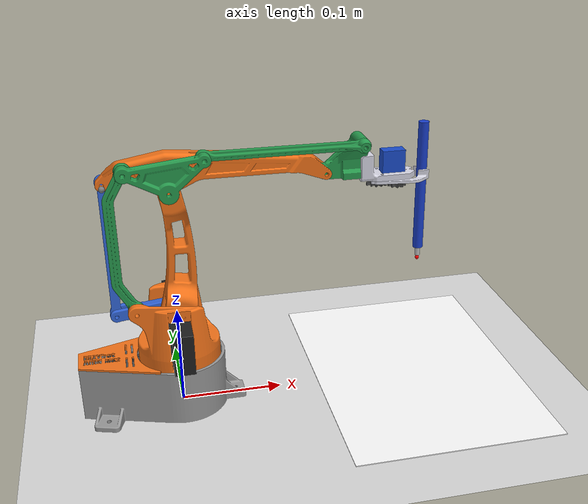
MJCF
<mujoco model="eezybotarm_mk2">
  <!-- Sinh tu dong boi build_model.py — KHONG sua tay, sua params.py roi build lai -->
  <compiler angle="radian" inertiafromgeom="false" meshdir="meshes"/>
  <option timestep="0.0005" integrator="implicitfast" gravity="0 0 -9.81"/>
  <visual><global offwidth="1280" offheight="960"/></visual>
  <asset>
    <texture name="grid" type="2d" builtin="checker" rgb1="0.9 0.9 0.9" rgb2="0.8 0.8 0.8" width="300" height="300"/>
    <material name="grid" texture="grid" texrepeat="10 10"/>
    <mesh name="EBAmk2_001_base" file="EBAmk2_001_base.stl"/>
    <mesh name="EBAmk2_011_gearmast" file="EBAmk2_011_gearmast.stl"/>
    <mesh name="EBAmk2_002_mainarm" file="EBAmk2_002_mainarm.stl"/>
    <mesh name="EBAmk2_006_horarm__" file="EBAmk2_006_horarm__.stl"/>
    <mesh name="EBAmk2_009_trialinkfront" file="EBAmk2_009_trialinkfront.stl"/>
    <mesh name="EBAmk2_014_claw_base" file="EBAmk2_014_claw_base.stl"/>
    <mesh name="EBAmk2_003_varm" file="EBAmk2_003_varm.stl"/>
    <mesh name="EBAmk2_004_link135" file="EBAmk2_004_link135.stl"/>
    <mesh name="EBAmk2_005_link135angled" file="EBAmk2_005_link135angled.stl"/>
    <mesh name="EBAmk2_007_trialink" file="EBAmk2_007_trialink.stl"/>
    <mesh name="EBAmk2_008_link147_new" file="EBAmk2_008_link147_new.stl"/>
    <mesh name="EBAmk2_015_claw_finger_dx" file="EBAmk2_015_claw_finger_dx.stl"/>
    <mesh name="EBAmk2_017_claw_finger_sx" file="EBAmk2_017_claw_finger_sx.stl"/>
    <mesh name="EBAmk2_018_claw_gear_driven" file="EBAmk2_018_claw_gear_driven.stl"/>
    <mesh name="EBAmk2_016_claw_gear_drive" file="EBAmk2_016_claw_gear_drive.stl"/>
    <mesh name="EBAmk2_012_mainbase" file="EBAmk2_012_mainbase.stl"/>
    <mesh name="EBAmk2_013_lower_base" file="EBAmk2_013_lower_base.stl"/>
    <mesh name="EBAmk2_019_drive_cover" file="EBAmk2_019_drive_cover.stl"/>
    <mesh name="EBAmk2_010_gearservo" file="EBAmk2_010_gearservo.stl"/>
  </asset>
  <worldbody>
    <light pos="0.3 -0.3 0.8" dir="-0.3 0.3 -0.8"/>
    <geom name="table" type="plane" size="0.6 0.6 0.01" material="grid" contype="0" conaffinity="0"/>
    <geom name="paper" type="box" pos="0.245 0 0.0005" size="0.105 0.1485 0.0005" rgba="1 1 1 1"
          contype="0" conaffinity="2" friction="0.2 0.005 0.0001" solref="0.002 1"/>
    <geom type="mesh" mesh="EBAmk2_012_mainbase" rgba="0.6 0.6 0.6 1" contype="0" conaffinity="0" group="1"/>
    <geom type="mesh" mesh="EBAmk2_013_lower_base" rgba="0.5 0.5 0.5 1" contype="0" conaffinity="0" group="1"/>
    <geom type="mesh" mesh="EBAmk2_019_drive_cover" rgba="0.95 0.45 0.1 1" contype="0" conaffinity="0" group="1"/>
    <geom name="mg996r_base" type="box" pos="-0.066 0 0.0238" size="0.02035 0.00985 0.02145" rgba="0.12 0.12 0.12 1" contype="0" conaffinity="0" group="1"/>
    <body name="gearservo" pos="-0.05625 0 0">
      <inertial pos="-8.7805e-07 2.34676e-06 0.0475788" mass="0.00566278" fullinertia="5.82105e-07 5.82105e-07 1.14117e-06 -7.65455e-15 -2.11369e-16 3.82301e-16"/>
      <joint name="gearservo" type="hinge" axis="0 0 1" armature="1e-06"/>
      <geom type="mesh" mesh="EBAmk2_010_gearservo" rgba="0.3 0.3 0.3 1" contype="0" conaffinity="0" group="1"/>
    </body>
    <body name="turret" pos="0 0 0">
      <inertial pos="-0.000300579 -0.000617576 0.073251" mass="0.326504" fullinertia="0.000384604 0.000193279 0.000361709 -3.5564e-06 7.23647e-06 5.39541e-06"/>
      <joint name="base_yaw" type="hinge" axis="0 0 1" damping="0.669011" armature="0" frictionloss="0"/>
      <geom type="mesh" mesh="EBAmk2_001_base" rgba="0.95 0.45 0.1 1" contype="0" conaffinity="0" group="1"/>
      <geom type="mesh" mesh="EBAmk2_011_gearmast" rgba="0.3 0.3 0.3 1" contype="0" conaffinity="0" group="1"/>
      <geom name="mg996r_elbow" type="box" pos="0 0.0395 0.0845" size="0.00985 0.02145 0.02035" rgba="0.12 0.12 0.12 1" contype="0" conaffinity="0" group="1"/>
      <geom name="mg996r_shoulder" type="box" pos="0 -0.0394 0.0845" size="0.00985 0.02145 0.02035" rgba="0.12 0.12 0.12 1" contype="0" conaffinity="0" group="1"/>
      <body name="mainarm" pos="0 0 0.09425">
        <inertial pos="0.00470724 -0.00264703 0.0590433" mass="0.0830792" fullinertia="0.000184127 0.000181815 1.46534e-05 -3.97752e-07 -1.55376e-06 -8.495e-07"/>
        <joint name="shoulder" type="hinge" axis="0 -1 0" damping="0.167253" armature="0" frictionloss="0"/>
        <geom type="mesh" mesh="EBAmk2_002_mainarm" rgba="0.95 0.45 0.1 1" contype="0" conaffinity="0" group="1"/>
        <site name="E_main" pos="8.26637e-18 0 0.135" size="0.003"/>
        <body name="horarm" pos="8.26637e-18 0 0.135">
          <inertial pos="0.0367294 0.00545907 0.0124691" mass="0.0485629" fullinertia="6.90345e-06 0.000173534 0.000173167 5.45019e-06 9.72735e-07 5.84072e-07"/>
          <joint name="elbow_rel" type="hinge" axis="0 -1 0" damping="0" armature="0" frictionloss="0"/>
          <geom type="mesh" mesh="EBAmk2_006_horarm__" rgba="0.95 0.45 0.1 1" contype="0" conaffinity="0" group="1"/>
          <site name="T_hor" pos="-0.057 0 0" size="0.003"/>
          <body name="wrist" pos="0.147 0 0">
            <inertial pos="0.0572645 0.000467674 -0.00502704" mass="0.0517672" fullinertia="4.15074e-05 8.95982e-05 5.07315e-05 3.198e-07 2.09916e-05 3.06161e-07"/>
            <joint name="wrist_rel" type="hinge" axis="0 -1 0" damping="0" armature="0" frictionloss="0"/>
            <geom type="mesh" mesh="EBAmk2_009_trialinkfront" rgba="0.15 0.6 0.3 1" contype="0" conaffinity="0" group="1"/>
            <geom type="mesh" mesh="EBAmk2_014_claw_base" rgba="0.85 0.85 0.9 1" contype="0" conaffinity="0" group="1"/>
            <geom name="sg90" type="box" pos="0.066042 0.00048 0.00184594" size="0.0111 0.0059 0.0155" quat="0.999997 5.26836e-09 -0.00235397 0" rgba="0.1 0.3 0.8 1" contype="0" conaffinity="0" group="1"/>
            <site name="Q_wrist" pos="0.0326024 0 0.0280372" size="0.003"/>
            <geom name="pen_body" type="cylinder" fromto="0.0963512 0.000475 -0.0859973 0.0957486 0.000475 0.0420012" size="0.005" rgba="0.1 0.25 0.8 1" contype="0" conaffinity="0" group="1"/>
<geom name="pen_cone" type="cylinder" fromto="0.0963936 0.000475 -0.0949972 0.0963512 0.000475 -0.0859973" size="0.0025" rgba="0.75 0.75 0.75 1" contype="0" conaffinity="0" group="1"/>
<geom name="pen_neck" type="cylinder" fromto="0.0964053 0.000475 -0.0974972 0.0963936 0.000475 -0.0949972" size="0.0008" rgba="0.6 0.6 0.6 1" contype="0" conaffinity="0" group="1"/>
<geom name="pen_tip" type="sphere" pos="0.0964053 0.000475 -0.0974972" size="0.0005" rgba="0.05 0.05 0.05 1" contype="2" conaffinity="0" condim="3" friction="0.2 0.005 0.0001" solref="0.002 1" margin="5e-05" gap="5e-05"/>
<site name="tool" pos="0.0964077 0.000475 -0.0979972" size="0.002" rgba="1 0 0 1"/>
<site name="grip" pos="0.095984 0.000475 -0.0079982" size="0.002" rgba="0 1 0 1"/>
            <body name="finger_dx" pos="0.053596 -0.00857 -0.00964778">
              <inertial pos="0.018535 0.00014029 -0.000902766" mass="0.00182761" fullinertia="2.78611e-08 5.359e-07 5.5226e-07 2.25614e-08 -2.3201e-08 -2.22639e-09"/>
              <joint name="finger_dx" type="hinge" axis="-0.00470793 0 0.999989" armature="1e-06" limited="true" range="-0.698132 0"/>
              <geom type="mesh" mesh="EBAmk2_015_claw_finger_dx" rgba="0.85 0.85 0.9 1" contype="0" conaffinity="0" group="1"/>
            </body>
            <body name="finger_sx" pos="0.053596 0.00952 -0.00964778">
              <inertial pos="0.00993654 -0.000868061 -0.00313497" mass="0.00338882" fullinertia="9.13503e-08 8.79448e-07 9.13217e-07 -4.54277e-08 -9.62561e-08 -8.4332e-09"/>
              <joint name="finger_sx" type="hinge" axis="-0.00470793 0 0.999989" armature="1e-06" limited="true" range="0 0.698132"/>
              <geom type="mesh" mesh="EBAmk2_017_claw_finger_sx" rgba="0.85 0.85 0.9 1" contype="0" conaffinity="0" group="1"/>
              <geom type="mesh" mesh="EBAmk2_018_claw_gear_driven" rgba="0.3 0.3 0.3 1" contype="0" conaffinity="0" group="1"/>
            </body>
            <body name="gear016" pos="0.0708738 0.00048 -0.00956644">
              <inertial pos="-0.000317855 -0.000338247 -0.00667189" mass="0.000712942" fullinertia="1.55726e-08 1.5504e-08 2.81072e-08 1.01859e-09 2.55386e-10 3.08401e-10"/>
              <joint name="gripper" type="hinge" axis="-0.00470793 0 0.999989" armature="1e-06" damping="0.0168564" limited="true" range="-1.11701 0"/>
              <geom type="mesh" mesh="EBAmk2_016_claw_gear_drive" rgba="0.3 0.3 0.3 1" contype="0" conaffinity="0" group="1"/>
            </body>
          </body>
        </body>
      </body>
      <body name="varm" pos="0 0 0.09425">
        <inertial pos="-0.0203304 0.0169755 0.000568095" mass="0.0150344" fullinertia="7.85024e-07 6.84699e-06 6.5352e-06 4.20299e-07 1.28454e-07 -8.41439e-09"/>
        <joint name="elbow_servo" type="hinge" axis="0 -1 0" damping="0.167253" armature="0" frictionloss="0"/>
        <geom type="mesh" mesh="EBAmk2_003_varm" rgba="0.2 0.4 0.85 1" contype="0" conaffinity="0" group="1"/>
        <body name="link004" pos="-0.057 0 0">
          <inertial pos="4.57987e-07 0.0198289 0.0734379" mass="0.00732513" fullinertia="1.65303e-05 1.65488e-05 8.34606e-08 -1.63591e-11 -1.23271e-09 -2.13042e-07"/>
          <joint name="l004" type="hinge" axis="0 -1 0" damping="0" armature="0" frictionloss="0"/>
          <geom type="mesh" mesh="EBAmk2_004_link135" rgba="0.2 0.4 0.85 1" contype="0" conaffinity="0" group="1"/>
          <site name="T_l004" pos="7.10543e-18 0 0.135" size="0.003"/>
        </body>
      </body>
      <body name="link005" pos="-0.03797 0 0.11444">
        <inertial pos="-0.00937315 -0.0151939 0.0675052" mass="0.0081693" fullinertia="1.82316e-05 1.86257e-05 4.29545e-07 1.54809e-08 -4.774e-10 -7.61011e-13"/>
        <joint name="l005" type="hinge" axis="0 -1 0" damping="0" armature="0" frictionloss="0"/>
        <geom type="mesh" mesh="EBAmk2_005_link135angled" rgba="0.15 0.6 0.3 1" contype="0" conaffinity="0" group="1"/>
        <body name="trialink" pos="3.66504e-06 0 0.134998">
          <inertial pos="0.0356784 -0.0209389 -0.00553182" mass="0.0230965" fullinertia="2.40987e-06 9.14099e-06 7.94166e-06 -6.98248e-08 -4.70102e-07 2.85865e-07"/>
          <joint name="tri" type="hinge" axis="0 -1 0" damping="0" armature="0" frictionloss="0"/>
          <geom type="mesh" mesh="EBAmk2_007_trialink" rgba="0.15 0.6 0.3 1" contype="0" conaffinity="0" group="1"/>
          <site name="E_tri" pos="0.0379663 0 -0.0201881" size="0.003"/>
          <body name="link008" pos="0.0705687 0 0.00784916">
            <inertial pos="0.079606 -0.0155891 4.11825e-07" mass="0.00781487" fullinertia="8.72626e-08 2.05164e-05 2.04965e-05 2.35633e-07 -1.39562e-09 1.59973e-11"/>
            <joint name="l008" type="hinge" axis="0 -1 0" damping="0" armature="0" frictionloss="0"/>
            <geom type="mesh" mesh="EBAmk2_008_link147_new" rgba="0.15 0.6 0.3 1" contype="0" conaffinity="0" group="1"/>
            <site name="Q_l008" pos="0.147 0 0" size="0.003"/>
          </body>
        </body>
      </body>
    </body>
  </worldbody>
  <equality>
    <!-- 3 vong hinh binh hanh -->
    <connect name="loop_elbow_drive" site1="T_hor" site2="T_l004" solref="0.002 1"/>
    <connect name="loop_triangle" site1="E_main" site2="E_tri" solref="0.002 1"/>
    <connect name="loop_wrist" site1="Q_wrist" site2="Q_l008" solref="0.002 1"/>
    <!-- banh rang: 2 ngon an khop 1:1; 016 (10 rang) - 018 (16 rang) tren ngon trai; 010 - 011 de -->
    <joint name="fingers_mesh" joint1="finger_sx" joint2="finger_dx" polycoef="0 -1 0 0 0" solref="0.002 1"/>
    <joint name="gripper_gear" joint1="gripper" joint2="finger_dx" polycoef="0 1.6 0 0 0" solref="0.002 1"/>
    <joint name="base_gear" joint1="gearservo" joint2="base_yaw" polycoef="0 -2 0 0 0"/>
  </equality>
  <actuator>
    <!-- Servo MG996R (4.8V): tau_stall=0.922 Nm, w0=5.51 rad/s,
         kp=tau_stall/5.0 deg, back-EMF dat o damping cua khop -->
    <position name="servo_base" joint="base_yaw" gear="2.0" kp="10.5633" forcelimited="true" forcerange="-0.921825 0.921825" ctrllimited="true" ctrlrange="-1.5708 1.5708"/>
    <position name="servo_shoulder" joint="shoulder" kp="10.5633" forcelimited="true" forcerange="-0.921825 0.921825" ctrllimited="true" ctrlrange="-1.5708 1.5708"/>
    <position name="servo_elbow" joint="elbow_servo" kp="10.5633" forcelimited="true" forcerange="-0.921825 0.921825" ctrllimited="true" ctrlrange="-1.5708 1.5708"/>
    <!-- Servo kep SG90: 0 = kep but D10, am = mo -->
    <position name="servo_gripper" joint="gripper" kp="2.02277" forcelimited="true" forcerange="-0.17652 0.17652" ctrllimited="true" ctrlrange="-1.11701 0"/>
  </actuator>
  <sensor>
    <framepos name="tool_pos" objtype="site" objname="tool"/>
    <actuatorfrc name="frc_base" actuator="servo_base"/>
    <actuatorfrc name="frc_shoulder" actuator="servo_shoulder"/>
    <actuatorfrc name="frc_elbow" actuator="servo_elbow"/>
  </sensor>
</mujoco>
